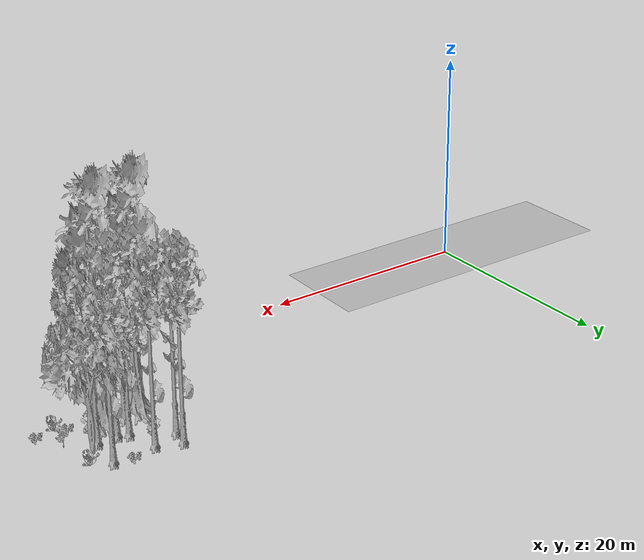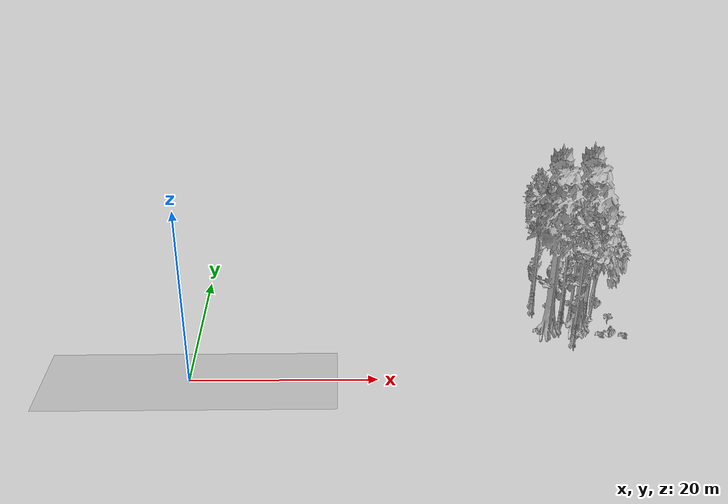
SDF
<sdf version="1.7">
 <world name="default">
  <model name="ground_plane">
   <static>1</static>
   <link name="link">
    <collision name="collision">
     <geometry><plane><normal>0 0 1</normal><size>100 100</size></plane></geometry>
     <surface><contact><ode><min_depth>0.01</min_depth><max_vel>0</max_vel></ode></contact></surface>
    </collision>
    <visual name="grass">
     <cast_shadows>0</cast_shadows>
     <geometry>
      <mesh>
       <scale>0.5814285714285714 0.18142857142857144 0.1</scale>
       <uri>file://grass_plane/meshes/grass_plane.dae</uri>
      </mesh>
     </geometry>
    </visual>
   </link>
  </model>
  <model name="Tree 8">
   <static>1</static>
   <pose>41.242199959268845 14.147451747460213 0 1.57079 -0 0</pose>
   <link name="link">
    <collision name="collision">
     <geometry><mesh><scale>3.5 5 3.5</scale><uri>model://tree_9/meshes/tree_9.obj</uri></mesh></geometry>
    </collision>
    <visual name="visual">
     <geometry><mesh><scale>3.5 5 3.5</scale><uri>model://tree_9/meshes/tree_9.obj</uri></mesh></geometry>
    </visual>
   </link>
  </model>
  <model name="Tree 19">
   <static>1</static>
   <pose>39.1514535294414 14.96116728217942 0 1.57079 -0 0</pose>
   <link name="link">
    <collision name="collision">
     <geometry><mesh><scale>3.5 5 3.5</scale><uri>model://tree_9/meshes/tree_9.obj</uri></mesh></geometry>
    </collision>
    <visual name="visual">
     <geometry><mesh><scale>3.5 5 3.5</scale><uri>model://tree_9/meshes/tree_9.obj</uri></mesh></geometry>
    </visual>
   </link>
  </model>
  <model name="Tree 22">
   <static>1</static>
   <pose>44.93329557938502 14.2828734806458 0 1.57079 -0 0</pose>
   <link name="link">
    <collision name="collision">
     <geometry><mesh><scale>3.5 5 3.5</scale><uri>model://tree_9/meshes/tree_9.obj</uri></mesh></geometry>
    </collision>
    <visual name="visual">
     <geometry><mesh><scale>3.5 5 3.5</scale><uri>model://tree_9/meshes/tree_9.obj</uri></mesh></geometry>
    </visual>
   </link>
  </model>
  <model name="Tree 30">
   <static>1</static>
   <pose>42.04787139200549 11.462298915795785 0 1.57079 -0 0</pose>
   <link name="link">
    <collision name="collision">
     <geometry><mesh><scale>3.5 5 3.5</scale><uri>model://tree_9/meshes/tree_9.obj</uri></mesh></geometry>
    </collision>
    <visual name="visual">
     <geometry><mesh><scale>3.5 5 3.5</scale><uri>model://tree_9/meshes/tree_9.obj</uri></mesh></geometry>
    </visual>
   </link>
  </model>
  <model name="Tree 68">
   <static>1</static>
   <pose>38.92123281926693 13.405544073550978 0 1.57079 -0 0</pose>
   <link name="link">
    <collision name="collision">
     <geometry><mesh><scale>3.5 5 3.5</scale><uri>model://tree_9/meshes/tree_9.obj</uri></mesh></geometry>
    </collision>
    <visual name="visual">
     <geometry><mesh><scale>3.5 5 3.5</scale><uri>model://tree_9/meshes/tree_9.obj</uri></mesh></geometry>
    </visual>
   </link>
  </model>
  <model name="Tree 120">
   <static>1</static>
   <pose>43.31545566372951 9.407131079812274 0 1.57079 -0 0</pose>
   <link name="link">
    <collision name="collision">
     <geometry><mesh><scale>3.5 5 3.5</scale><uri>model://tree_4/meshes/tree_4.obj</uri></mesh></geometry>
    </collision>
    <visual name="visual">
     <geometry><mesh><scale>3.5 5 3.5</scale><uri>model://tree_4/meshes/tree_4.obj</uri></mesh></geometry>
    </visual>
   </link>
  </model>
  <model name="Tree 220">
   <static>1</static>
   <pose>45.63208381585922 12.397928685810651 0 1.57079 -0 0</pose>
   <link name="link">
    <collision name="collision">
     <geometry><mesh><scale>3.5 5 3.5</scale><uri>model://tree_2/meshes/tree_2.obj</uri></mesh></geometry>
    </collision>
    <visual name="visual">
     <geometry><mesh><scale>3.5 5 3.5</scale><uri>model://tree_2/meshes/tree_2.obj</uri></mesh></geometry>
    </visual>
   </link>
  </model>
  <model name="Tree 297">
   <static>1</static>
   <pose>44.668066342095756 11.159920270966001 0 1.57079 -0 0</pose>
   <link name="link">
    <collision name="collision">
     <geometry><mesh><scale>3.5 5 3.5</scale><uri>model://tree_9/meshes/tree_9.obj</uri></mesh></geometry>
    </collision>
    <visual name="visual">
     <geometry><mesh><scale>3.5 5 3.5</scale><uri>model://tree_9/meshes/tree_9.obj</uri></mesh></geometry>
    </visual>
   </link>
  </model>
  <model name="Tree 300">
   <static>1</static>
   <pose>42.33268830159163 6.5563529471382545 0 1.57079 -0 0</pose>
   <link name="link">
    <collision name="collision">
     <geometry><mesh><scale>3.5 5 3.5</scale><uri>model://tree_9/meshes/tree_9.obj</uri></mesh></geometry>
    </collision>
    <visual name="visual">
     <geometry><mesh><scale>3.5 5 3.5</scale><uri>model://tree_9/meshes/tree_9.obj</uri></mesh></geometry>
    </visual>
   </link>
  </model>
  <model name="Tree 354">
   <static>1</static>
   <pose>41.24514992841256 9.207264633153649 0 1.57079 -0 0</pose>
   <link name="link">
    <collision name="collision">
     <geometry><mesh><scale>3.5 5 3.5</scale><uri>model://tree_9/meshes/tree_9.obj</uri></mesh></geometry>
    </collision>
    <visual name="visual">
     <geometry><mesh><scale>3.5 5 3.5</scale><uri>model://tree_9/meshes/tree_9.obj</uri></mesh></geometry>
    </visual>
   </link>
  </model>
  <model name="Tree 400">
   <static>1</static>
   <pose>42.9090634533061 11.08765316047672 0 1.57079 -0 0</pose>
   <link name="link">
    <collision name="collision">
     <geometry><mesh><scale>3.5 5 3.5</scale><uri>model://tree_9/meshes/tree_9.obj</uri></mesh></geometry>
    </collision>
    <visual name="visual">
     <geometry><mesh><scale>3.5 5 3.5</scale><uri>model://tree_9/meshes/tree_9.obj</uri></mesh></geometry>
    </visual>
   </link>
  </model>
  <model name="Tree 439">
   <static>1</static>
   <pose>39.90468308760481 8.990358708110957 0 1.57079 -0 0</pose>
   <link name="link">
    <collision name="collision">
     <geometry><mesh><scale>3.5 5 3.5</scale><uri>model://tree_4/meshes/tree_4.obj</uri></mesh></geometry>
    </collision>
    <visual name="visual">
     <geometry><mesh><scale>3.5 5 3.5</scale><uri>model://tree_4/meshes/tree_4.obj</uri></mesh></geometry>
    </visual>
   </link>
  </model>
  <model name="Bush 18">
   <static>1</static>
   <pose>44.7528392728979 9.974549721296217 0 1.57079 -0 0</pose>
   <link name="link">
    <collision name="collision">
     <geometry><mesh><scale>2 2 2</scale><uri>model://bush_0/meshes/bush_0.obj</uri></mesh></geometry>
     <surface><contact><collide_without_contact>false</collide_without_contact></contact></surface>
    </collision>
    <visual name="visual">
     <geometry><mesh><scale>2 2 2</scale><uri>model://bush_0/meshes/bush_0.obj</uri></mesh></geometry>
    </visual>
   </link>
  </model>
  <model name="Bush 88">
   <static>1</static>
   <pose>38.74384351586599 8.755018846400798 0 1.57079 -0 0</pose>
   <link name="link">
    <collision name="collision">
     <geometry><mesh><scale>2 2 2</scale><uri>model://bush_2/meshes/bush_2.obj</uri></mesh></geometry>
     <surface><contact><collide_without_contact>false</collide_without_contact></contact></surface>
    </collision>
    <visual name="visual">
     <geometry><mesh><scale>2 2 2</scale><uri>model://bush_2/meshes/bush_2.obj</uri></mesh></geometry>
    </visual>
   </link>
  </model>
  <model name="Bush 142">
   <static>1</static>
   <pose>46.73187086397593 7.6122173909069915 0 1.57079 -0 0</pose>
   <link name="link">
    <collision name="collision">
     <geometry><mesh><scale>2 2 2</scale><uri>model://bush_4/meshes/bush_4.obj</uri></mesh></geometry>
     <surface><contact><collide_without_contact>false</collide_without_contact></contact></surface>
    </collision>
    <visual name="visual">
     <geometry><mesh><scale>2 2 2</scale><uri>model://bush_4/meshes/bush_4.obj</uri></mesh></geometry>
    </visual>
   </link>
  </model>
  <model name="Bush 246">
   <static>1</static>
   <pose>40.8617130396879 12.917776261683798 0 1.57079 -0 0</pose>
   <link name="link">
    <collision name="collision">
     <geometry><mesh><scale>2 2 2</scale><uri>model://bush_0/meshes/bush_0.obj</uri></mesh></geometry>
     <surface><contact><collide_without_contact>false</collide_without_contact></contact></surface>
    </collision>
    <visual name="visual">
     <geometry><mesh><scale>2 2 2</scale><uri>model://bush_0/meshes/bush_0.obj</uri></mesh></geometry>
    </visual>
   </link>
  </model>
  <model name="Bush 261">
   <static>1</static>
   <pose>48.33133707758488 7.783779717241739 0 1.57079 -0 0</pose>
   <link name="link">
    <collision name="collision">
     <geometry><mesh><scale>2 2 2</scale><uri>model://bush_2/meshes/bush_2.obj</uri></mesh></geometry>
     <surface><contact><collide_without_contact>false</collide_without_contact></contact></surface>
    </collision>
    <visual name="visual">
     <geometry><mesh><scale>2 2 2</scale><uri>model://bush_2/meshes/bush_2.obj</uri></mesh></geometry>
    </visual>
   </link>
  </model>
  <model name="Bush 267">
   <static>1</static>
   <pose>45.74631687313679 8.01318118337214 0 1.57079 -0 0</pose>
   <link name="link">
    <collision name="collision">
     <geometry><mesh><scale>2 2 2</scale><uri>model://bush_2/meshes/bush_2.obj</uri></mesh></geometry>
     <surface><contact><collide_without_contact>false</collide_without_contact></contact></surface>
    </collision>
    <visual name="visual">
     <geometry><mesh><scale>2 2 2</scale><uri>model://bush_2/meshes/bush_2.obj</uri></mesh></geometry>
    </visual>
   </link>
  </model>
  <model name="Bush 275">
   <static>1</static>
   <pose>46.666767576128336 13.79737217819715 0 1.57079 -0 0</pose>
   <link name="link">
    <collision name="collision">
     <geometry><mesh><scale>2 2 2</scale><uri>model://bush_4/meshes/bush_4.obj</uri></mesh></geometry>
     <surface><contact><collide_without_contact>false</collide_without_contact></contact></surface>
    </collision>
    <visual name="visual">
     <geometry><mesh><scale>2 2 2</scale><uri>model://bush_4/meshes/bush_4.obj</uri></mesh></geometry>
    </visual>
   </link>
  </model>
  <model name="Bush 310">
   <static>1</static>
   <pose>43.545814228661285 7.745039634640754 0 1.57079 -0 0</pose>
   <link name="link">
    <collision name="collision">
     <geometry><mesh><scale>2 2 2</scale><uri>model://bush_3/meshes/bush_3.obj</uri></mesh></geometry>
     <surface><contact><collide_without_contact>false</collide_without_contact></contact></surface>
    </collision>
    <visual name="visual">
     <geometry><mesh><scale>2 2 2</scale><uri>model://bush_3/meshes/bush_3.obj</uri></mesh></geometry>
    </visual>
   </link>
  </model>
  <model name="Bush 315">
   <static>1</static>
   <pose>43.40585142431377 14.823010193817964 0 1.57079 -0 0</pose>
   <link name="link">
    <collision name="collision">
     <geometry><mesh><scale>2 2 2</scale><uri>model://bush_2/meshes/bush_2.obj</uri></mesh></geometry>
     <surface><contact><collide_without_contact>false</collide_without_contact></contact></surface>
    </collision>
    <visual name="visual">
     <geometry><mesh><scale>2 2 2</scale><uri>model://bush_2/meshes/bush_2.obj</uri></mesh></geometry>
    </visual>
   </link>
  </model>
  <model name="Bush 332">
   <static>1</static>
   <pose>47.184222073322005 10.317883344305613 0 1.57079 -0 0</pose>
   <link name="link">
    <collision name="collision">
     <geometry><mesh><scale>2 2 2</scale><uri>model://bush_5/meshes/bush_5.obj</uri></mesh></geometry>
     <surface><contact><collide_without_contact>false</collide_without_contact></contact></surface>
    </collision>
    <visual name="visual">
     <geometry><mesh><scale>2 2 2</scale><uri>model://bush_5/meshes/bush_5.obj</uri></mesh></geometry>
    </visual>
   </link>
  </model>
 </world>
</sdf>
